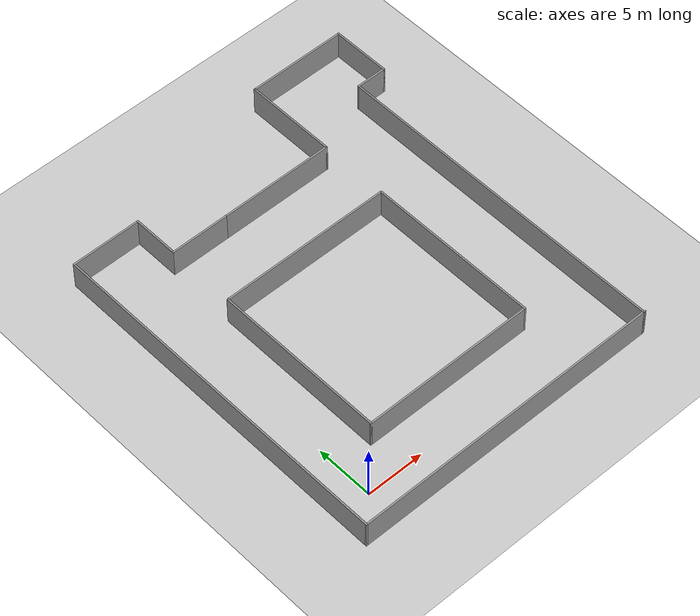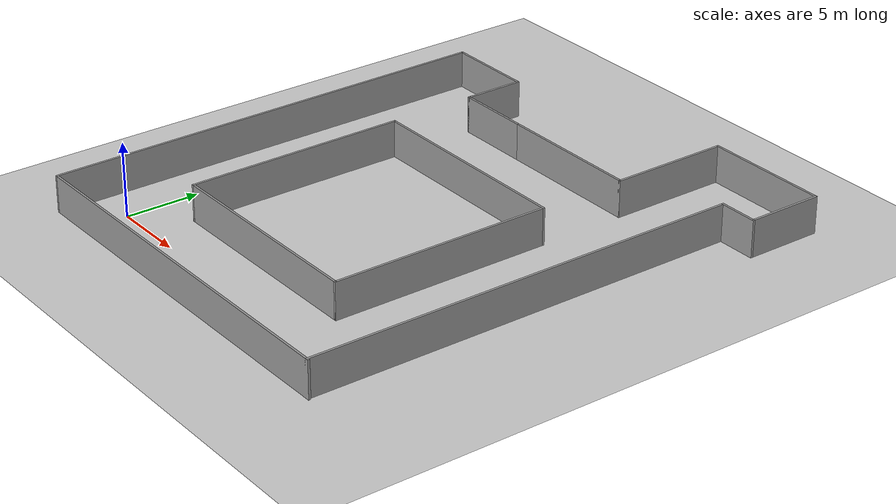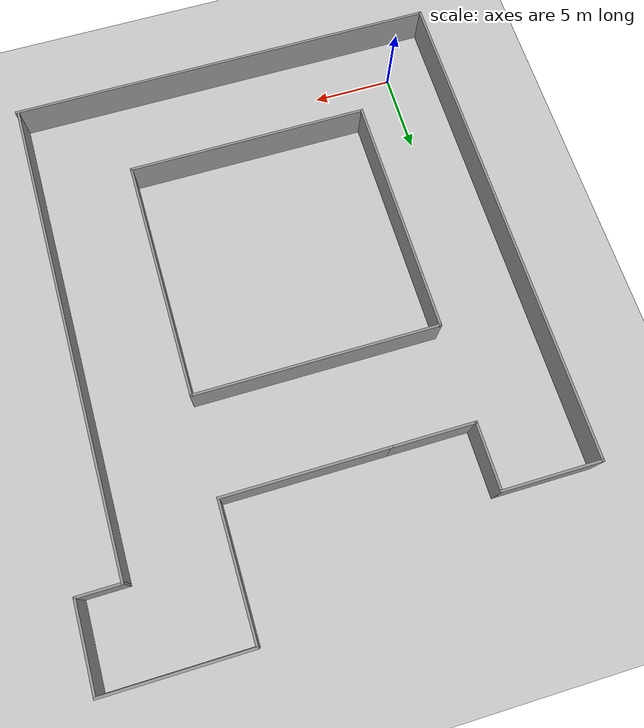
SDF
<sdf version="1.7">
 <world name="default">
  <light name="sun" type="directional">
   <pose>0 0 10 0 -0 0</pose>
   <diffuse>0.8 0.8 0.8 1</diffuse>
   <specular>0.2 0.2 0.2 1</specular>
   <attenuation>
    <range>1000</range>
    <constant>0.9</constant>
    <linear>0.01</linear>
    <quadratic>0.001</quadratic>
   </attenuation>
   <direction>-0.5 0.1 -0.9</direction>
   <spot><inner_angle>0</inner_angle><outer_angle>0</outer_angle><falloff>0</falloff></spot>
  </light>
  <model name="ground_plane">
   <static>1</static>
   <link name="link">
    <collision name="collision">
     <geometry><plane><normal>0 0 1</normal><size>100 100</size></plane></geometry>
     <surface>
      <contact><collide_bitmask>65535</collide_bitmask></contact>
      <friction><ode><mu>100</mu><mu2>50</mu2></ode></friction>
     </surface>
    </collision>
    <visual name="visual">
     <cast_shadows>0</cast_shadows>
     <geometry><plane><normal>0 0 1</normal><size>100 100</size></plane></geometry>
     <material>
      <script><uri>file://media/materials/scripts/gazebo.material</uri><name>Gazebo/Grey</name></script>
     </material>
    </visual>
   </link>
  </model>
  <gravity>0 0 -9.8</gravity>
  <magnetic_field>6e-06 2.3e-05 -4.2e-05</magnetic_field>
  <atmosphere type="adiabatic"/>
  <physics type="ode">
   <max_step_size>0.001</max_step_size>
   <real_time_factor>1</real_time_factor>
   <real_time_update_rate>1000</real_time_update_rate>
  </physics>
  <scene><ambient>0.4 0.4 0.4 1</ambient><background>0.7 0.7 0.7 1</background><shadows>1</shadows></scene>
  <spherical_coordinates>
   <surface_model>EARTH_WGS84</surface_model>
   <latitude_deg>0</latitude_deg>
   <longitude_deg>0</longitude_deg>
   <elevation>0</elevation>
   <heading_deg>0</heading_deg>
  </spherical_coordinates>
  <model name="office_hall">
   <pose>11.8 14.5 0 0 -0 0</pose>
   <link name="Wall_0">
    <collision name="Wall_0_Collision">
     <geometry><box><size>15.15 0.15 2.5</size></box></geometry>
     <pose>0 0 1.25 0 -0 0</pose>
    </collision>
    <visual name="Wall_0_Visual">
     <pose>0 0 1.25 0 -0 0</pose>
     <geometry><box><size>15.15 0.15 2.5</size></box></geometry>
     <material>
      <script><uri>file://media/materials/scripts/gazebo.material</uri><name>Gazebo/Grey</name></script>
      <ambient>1 1 1 1</ambient>
     </material>
     <meta><layer>0</layer></meta>
    </visual>
    <pose>-8.8 -4 0 0 -0 1.5708</pose>
   </link>
   <link name="Wall_10">
    <collision name="Wall_10_Collision">
     <geometry><box><size>31.15 0.15 2.5</size></box></geometry>
     <pose>0 0 1.25 0 -0 0</pose>
    </collision>
    <visual name="Wall_10_Visual">
     <pose>0 0 1.25 0 -0 0</pose>
     <geometry><box><size>31.15 0.15 2.5</size></box></geometry>
     <material>
      <script><uri>file://media/materials/scripts/gazebo.material</uri><name>Gazebo/Grey</name></script>
      <ambient>1 1 1 1</ambient>
     </material>
     <meta><layer>0</layer></meta>
    </visual>
    <pose>-14.8 -2 0 0 -0 1.5708</pose>
   </link>
   <link name="Wall_12">
    <collision name="Wall_12_Collision">
     <geometry><box><size>6.15 0.15 2.5</size></box></geometry>
     <pose>0 0 1.25 0 -0 0</pose>
    </collision>
    <visual name="Wall_12_Visual">
     <pose>0 0 1.25 0 -0 0</pose>
     <geometry><box><size>6.15 0.15 2.5</size></box></geometry>
     <material>
      <script><uri>file://media/materials/scripts/gazebo.material</uri><name>Gazebo/Grey</name></script>
      <ambient>1 1 1 1</ambient>
     </material>
     <meta><layer>0</layer></meta>
    </visual>
    <pose>-11.8 13.5 0 0 -0 0</pose>
   </link>
   <link name="Wall_15">
    <collision name="Wall_15_Collision">
     <geometry><box><size>4.15 0.15 2.5</size></box></geometry>
     <pose>0 0 1.25 0 -0 0</pose>
    </collision>
    <visual name="Wall_15_Visual">
     <pose>0 0 1.25 0 -0 0</pose>
     <geometry><box><size>4.15 0.15 2.5</size></box></geometry>
     <material>
      <script><uri>file://media/materials/scripts/gazebo.material</uri><name>Gazebo/Grey</name></script>
      <ambient>1 1 1 1</ambient>
     </material>
     <meta><layer>0</layer></meta>
    </visual>
    <pose>-8.8 11.5 0 0 -0 -1.5708</pose>
   </link>
   <link name="Wall_17">
    <collision name="Wall_17_Collision">
     <geometry><box><size>5.15 0.15 2.5</size></box></geometry>
     <pose>0 0 1.25 0 -0 0</pose>
    </collision>
    <visual name="Wall_17_Visual">
     <pose>0 0 1.25 0 -0 0</pose>
     <geometry><box><size>5.15 0.15 2.5</size></box></geometry>
     <material>
      <script><uri>file://media/materials/scripts/gazebo.material</uri><name>Gazebo/Grey</name></script>
      <ambient>1 1 1 1</ambient>
     </material>
     <meta><layer>0</layer></meta>
    </visual>
    <pose>-6.3 9.5 0 0 -0 0</pose>
   </link>
   <link name="Wall_19">
    <collision name="Wall_19_Collision">
     <geometry><box><size>10.15 0.15 2.5</size></box></geometry>
     <pose>0 0 1.25 0 -0 0</pose>
    </collision>
    <visual name="Wall_19_Visual">
     <pose>0 0 1.25 0 -0 0</pose>
     <geometry><box><size>10.15 0.15 2.5</size></box></geometry>
     <material>
      <script><uri>file://media/materials/scripts/gazebo.material</uri><name>Gazebo/Grey</name></script>
      <ambient>1 1 1 1</ambient>
     </material>
     <meta><layer>0</layer></meta>
    </visual>
    <pose>1.2 9.5 0 0 -0 0</pose>
   </link>
   <link name="Wall_23">
    <collision name="Wall_23_Collision">
     <geometry><box><size>8.15 0.15 2.5</size></box></geometry>
     <pose>0 0 1.25 0 -0 0</pose>
    </collision>
    <visual name="Wall_23_Visual">
     <pose>0 0 1.25 0 -0 0</pose>
     <geometry><box><size>8.15 0.15 2.5</size></box></geometry>
     <material>
      <script><uri>file://media/materials/scripts/gazebo.material</uri><name>Gazebo/Grey</name></script>
      <ambient>1 1 1 1</ambient>
     </material>
     <meta><layer>0</layer></meta>
    </visual>
    <pose>6.2 13.5 0 0 -0 1.5708</pose>
   </link>
   <link name="Wall_25">
    <collision name="Wall_25_Collision">
     <geometry><box><size>8.75 0.15 2.5</size></box></geometry>
     <pose>0 0 1.25 0 -0 0</pose>
    </collision>
    <visual name="Wall_25_Visual">
     <pose>0 0 1.25 0 -0 0</pose>
     <geometry><box><size>8.75 0.15 2.5</size></box></geometry>
     <material>
      <script><uri>file://media/materials/scripts/gazebo.material</uri><name>Gazebo/Grey</name></script>
      <ambient>1 1 1 1</ambient>
     </material>
     <meta><layer>0</layer></meta>
    </visual>
    <pose>10.5 17.5 0 0 -0 0</pose>
   </link>
   <link name="Wall_26">
    <collision name="Wall_26_Collision">
     <geometry><box><size>5.25 0.15 2.5</size></box></geometry>
     <pose>0 0 1.25 0 -0 0</pose>
    </collision>
    <visual name="Wall_26_Visual">
     <pose>0 0 1.25 0 -0 0</pose>
     <geometry><box><size>5.25 0.15 2.5</size></box></geometry>
     <material>
      <script><uri>file://media/materials/scripts/gazebo.material</uri><name>Gazebo/Grey</name></script>
      <ambient>1 1 1 1</ambient>
     </material>
     <meta><layer>0</layer></meta>
    </visual>
    <pose>14.8 14.95 0 0 -0 -1.5708</pose>
   </link>
   <link name="Wall_27">
    <collision name="Wall_27_Collision">
     <geometry><box><size>2.75 0.15 2.5</size></box></geometry>
     <pose>0 0 1.25 0 -0 0</pose>
    </collision>
    <visual name="Wall_27_Visual">
     <pose>0 0 1.25 0 -0 0</pose>
     <geometry><box><size>2.75 0.15 2.5</size></box></geometry>
     <material>
      <script><uri>file://media/materials/scripts/gazebo.material</uri><name>Gazebo/Grey</name></script>
      <ambient>1 1 1 1</ambient>
     </material>
     <meta><layer>0</layer></meta>
    </visual>
    <pose>13.5 12.4 0 0 -0 3.14159</pose>
   </link>
   <link name="Wall_31">
    <collision name="Wall_31_Collision">
     <geometry><box><size>30.05 0.15 2.5</size></box></geometry>
     <pose>0 0 1.25 0 -0 0</pose>
    </collision>
    <visual name="Wall_31_Visual">
     <pose>0 0 1.25 0 -0 0</pose>
     <geometry><box><size>30.05 0.15 2.5</size></box></geometry>
     <material>
      <script><uri>file://media/materials/scripts/gazebo.material</uri><name>Gazebo/Grey</name></script>
      <ambient>1 1 1 1</ambient>
     </material>
     <meta><layer>0</layer></meta>
    </visual>
    <pose>12.2 -2.55 0 0 -0 -1.5708</pose>
   </link>
   <link name="Wall_33">
    <collision name="Wall_33_Collision">
     <geometry><box><size>27.25 0.15 2.5</size></box></geometry>
     <pose>0 0 1.25 0 -0 0</pose>
    </collision>
    <visual name="Wall_33_Visual">
     <pose>0 0 1.25 0 -0 0</pose>
     <geometry><box><size>27.25 0.15 2.5</size></box></geometry>
     <material>
      <script><uri>file://media/materials/scripts/gazebo.material</uri><name>Gazebo/Grey</name></script>
      <ambient>1 1 1 1</ambient>
     </material>
     <meta><layer>0</layer></meta>
    </visual>
    <pose>-1.25 -17.5 0 0 -0 0</pose>
   </link>
   <link name="Wall_4">
    <collision name="Wall_4_Collision">
     <geometry><box><size>15.15 0.15 2.5</size></box></geometry>
     <pose>0 0 1.25 0 -0 0</pose>
    </collision>
    <visual name="Wall_4_Visual">
     <pose>0 0 1.25 0 -0 0</pose>
     <geometry><box><size>15.15 0.15 2.5</size></box></geometry>
     <material>
      <script><uri>file://media/materials/scripts/gazebo.material</uri><name>Gazebo/Grey</name></script>
      <ambient>1 1 1 1</ambient>
     </material>
     <meta><layer>0</layer></meta>
    </visual>
    <pose>-1.3 -11.5 0 0 -0 0</pose>
   </link>
   <link name="Wall_6">
    <collision name="Wall_6_Collision">
     <geometry><box><size>15.15 0.15 2.5</size></box></geometry>
     <pose>0 0 1.25 0 -0 0</pose>
    </collision>
    <visual name="Wall_6_Visual">
     <pose>0 0 1.25 0 -0 0</pose>
     <geometry><box><size>15.15 0.15 2.5</size></box></geometry>
     <material>
      <script><uri>file://media/materials/scripts/gazebo.material</uri><name>Gazebo/Grey</name></script>
      <ambient>1 1 1 1</ambient>
     </material>
     <meta><layer>0</layer></meta>
    </visual>
    <pose>6.2 -4 0 0 -0 1.5708</pose>
   </link>
   <link name="Wall_8">
    <collision name="Wall_8_Collision">
     <geometry><box><size>15.15 0.15 2.5</size></box></geometry>
     <pose>0 0 1.25 0 -0 0</pose>
    </collision>
    <visual name="Wall_8_Visual">
     <pose>0 0 1.25 0 -0 0</pose>
     <geometry><box><size>15.15 0.15 2.5</size></box></geometry>
     <material>
      <script><uri>file://media/materials/scripts/gazebo.material</uri><name>Gazebo/Grey</name></script>
      <ambient>1 1 1 1</ambient>
     </material>
     <meta><layer>0</layer></meta>
    </visual>
    <pose>-1.3 3.5 0 0 -0 0</pose>
   </link>
   <static>1</static>
  </model>
 </world>
</sdf>
